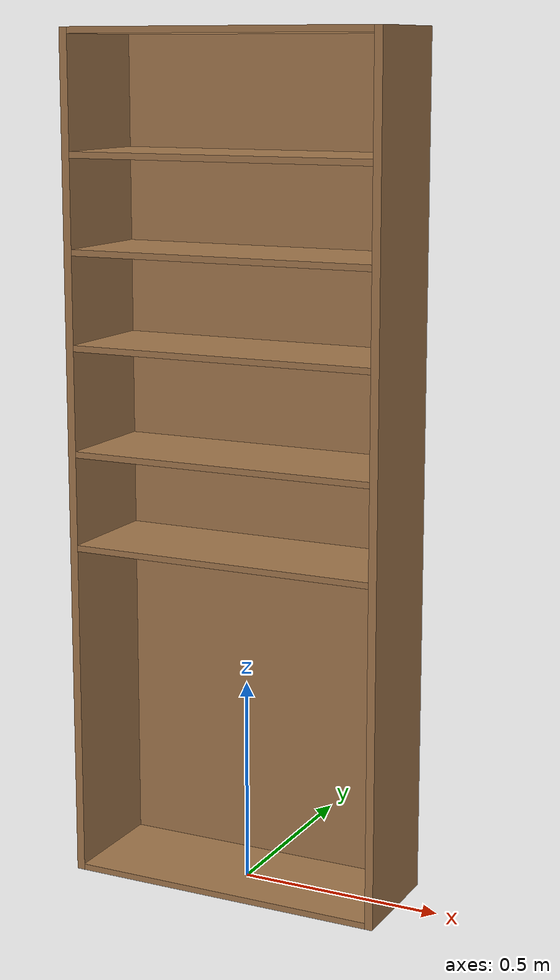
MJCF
<mujoco model="large_shelf">
  <compiler angle="radian"/>
  <default>
    <geom type="box" rgba="0.64 0.47 0.30 1"/>
  </default>
  <worldbody>
    <body name="base">
      <geom name="left_panel" pos="-0.39 -0.01 1.025" size="0.01 0.14 1.025"/>
      <geom name="right_panel" pos="0.39 -0.01 1.025" size="0.01 0.14 1.025"/>
      <geom name="back_panel" pos="0 0.14 1.025" size="0.38 0.01 1.025"/>
      <geom name="bottom" pos="0 -0.01 0.0075" size="0.38 0.14 0.0075"/>
      <geom name="top" pos="0 -0.01 2.0425" size="0.38 0.14 0.0075"/>
      <geom name="shelf_1" pos="0 -0.01 0.8275" size="0.38 0.14 0.0075"/>
      <geom name="shelf_2" pos="0 -0.01 1.0575" size="0.38 0.14 0.0075"/>
      <geom name="shelf_3" pos="0 -0.01 1.3125" size="0.38 0.14 0.0075"/>
      <geom name="shelf_4" pos="0 -0.01 1.5375" size="0.38 0.14 0.0075"/>
      <geom name="shelf_5" pos="0 -0.01 1.7625" size="0.38 0.14 0.0075"/>
    </body>
  </worldbody>
</mujoco>
